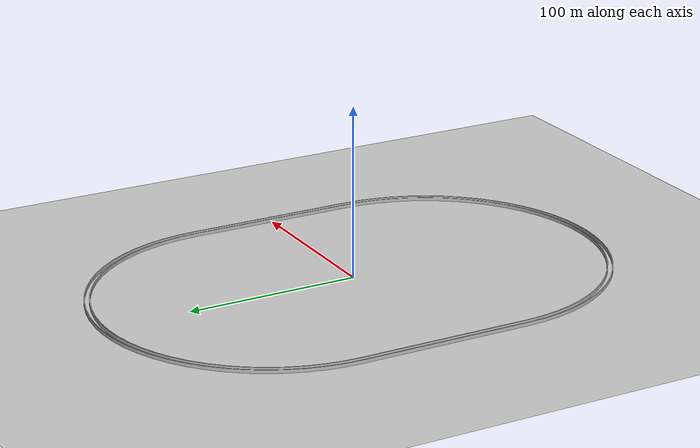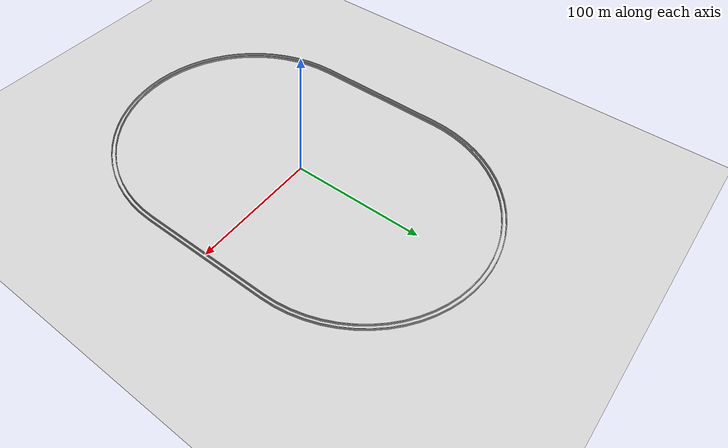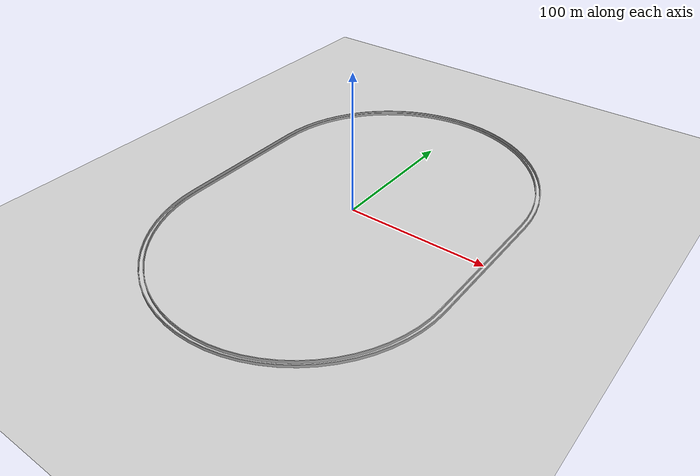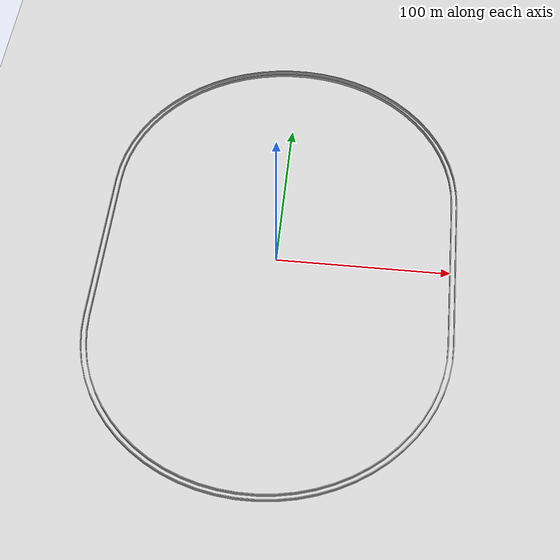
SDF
<sdf version="1.7">
 <world name="default">
  <light name="sun" type="directional">
   <pose>0 0 10 0 -0 0</pose>
   <diffuse>0.8 0.8 0.8 1</diffuse>
   <specular>0.2 0.2 0.2 1</specular>
   <attenuation>
    <range>1000</range>
    <constant>0.9</constant>
    <linear>0.01</linear>
    <quadratic>0.001</quadratic>
   </attenuation>
   <direction>-0.5 0.1 -0.9</direction>
   <spot><inner_angle>0</inner_angle><outer_angle>0</outer_angle><falloff>0</falloff></spot>
  </light>
  <model name="ground_plane">
   <static>1</static>
   <link name="link">
    <collision name="collision">
     <geometry><plane><normal>0 0 1</normal><size>500 500</size></plane></geometry>
     <surface><friction><ode><mu>100</mu><mu2>50</mu2></ode></friction></surface>
    </collision>
    <visual name="visual">
     <cast_shadows>0</cast_shadows>
     <geometry><plane><normal>0 0 1</normal><size>500 500</size></plane></geometry>
     <material>
      <script><uri>file://media/materials/scripts/gazebo.material</uri><name>Gazebo/Grey</name></script>
     </material>
    </visual>
   </link>
  </model>
  <gravity>0 0 -9.8</gravity>
  <magnetic_field>6e-06 2.3e-05 -4.2e-05</magnetic_field>
  <atmosphere type="adiabatic"/>
  <physics type="ode">
   <max_step_size>0.001</max_step_size>
   <real_time_factor>1</real_time_factor>
   <real_time_update_rate>1000</real_time_update_rate>
  </physics>
  <scene><ambient>0.4 0.4 0.4 1</ambient><background>0.7 0.7 0.7 1</background><shadows>1</shadows></scene>
  <spherical_coordinates>
   <surface_model>EARTH_WGS84</surface_model>
   <latitude_deg>0</latitude_deg>
   <longitude_deg>0</longitude_deg>
   <elevation>0</elevation>
   <heading_deg>0</heading_deg>
  </spherical_coordinates>
  <model name="track">
   <link name="track_base">
    <inertial>
     <mass>10000</mass>
     <inertia>
      <ixx>1.70587e+06</ixx>
      <ixy>0</ixy>
      <ixz>0</ixz>
      <iyy>1.75725e+07</iyy>
      <iyz>0</iyz>
      <izz>1.92717e+07</izz>
     </inertia>
    </inertial>
    <visual name="track_base_fixed_joint_lump__track_visual_visual">
     <pose>-103 -153 0 1.5708 -0 1.5708</pose>
     <geometry><mesh><scale>1 1 1</scale><uri>../../robot1_description/meshes/track.stl</uri></mesh></geometry>
     <material><shader type="pixel"/></material>
    </visual>
    <collision name="track_base_fixed_joint_lump__track_collision_collision">
     <pose>-103 -153 0 1.5708 -0 1.5708</pose>
     <geometry><mesh><uri>../../robot1_description/meshes/track.stl</uri><scale>1 1 1</scale></mesh></geometry>
     <surface>
      <friction>
       <ode><mu>1</mu><mu2>1</mu2><fdir1>0 0 0</fdir1><slip1>0</slip1><slip2>0</slip2></ode>
       <torsional>
        <coefficient>1</coefficient>
        <patch_radius>0</patch_radius>
        <surface_radius>0</surface_radius>
        <use_patch_radius>1</use_patch_radius>
        <ode><slip>0</slip></ode>
       </torsional>
      </friction>
      <bounce><restitution_coefficient>0</restitution_coefficient><threshold>1e+06</threshold></bounce>
      <contact>
       <collide_without_contact>0</collide_without_contact>
       <collide_without_contact_bitmask>1</collide_without_contact_bitmask>
       <collide_bitmask>1</collide_bitmask>
       <ode>
        <soft_cfm>0</soft_cfm>
        <soft_erp>0.2</soft_erp>
        <kp>1e+13</kp>
        <kd>1</kd>
        <max_vel>0.01</max_vel>
        <min_depth>0</min_depth>
       </ode>
       <bullet>
        <split_impulse>1</split_impulse>
        <split_impulse_penetration_threshold>-0.01</split_impulse_penetration_threshold>
        <soft_cfm>0</soft_cfm>
        <soft_erp>0.2</soft_erp>
        <kp>1e+13</kp>
        <kd>1</kd>
       </bullet>
      </contact>
     </surface>
    </collision>
   </link>
   <static>0</static>
   <pose>0 0 7.6e-05 -4e-06 0 0</pose>
  </model>
 </world>
</sdf>
